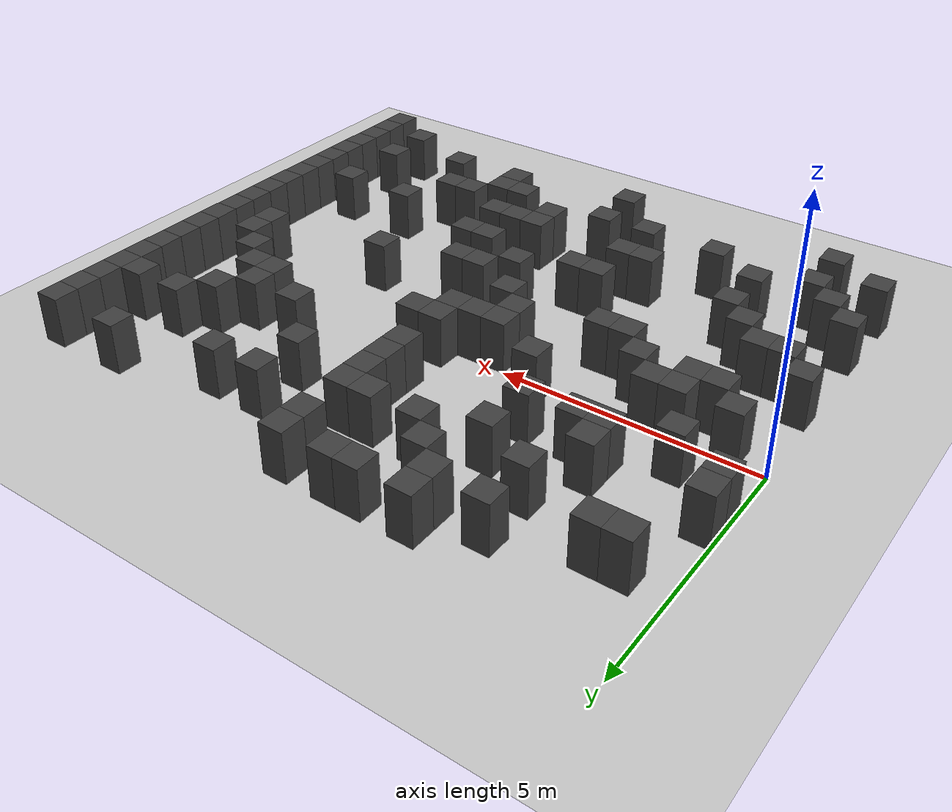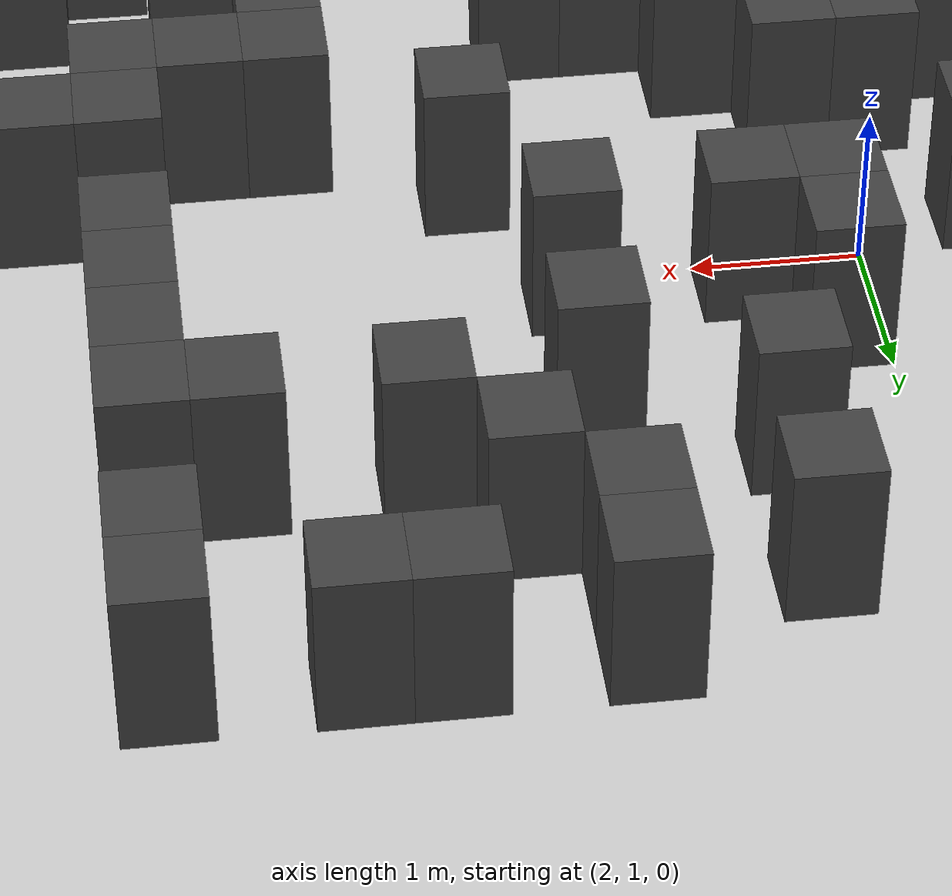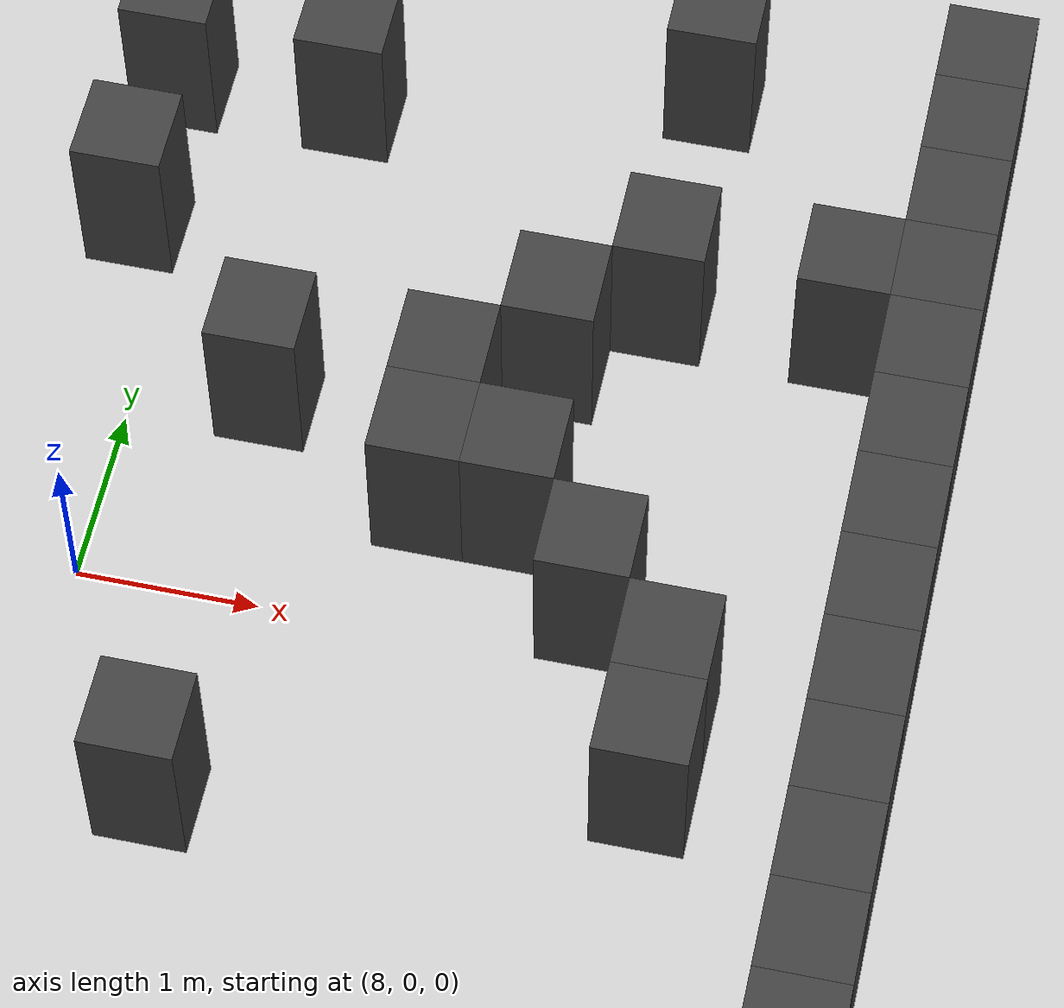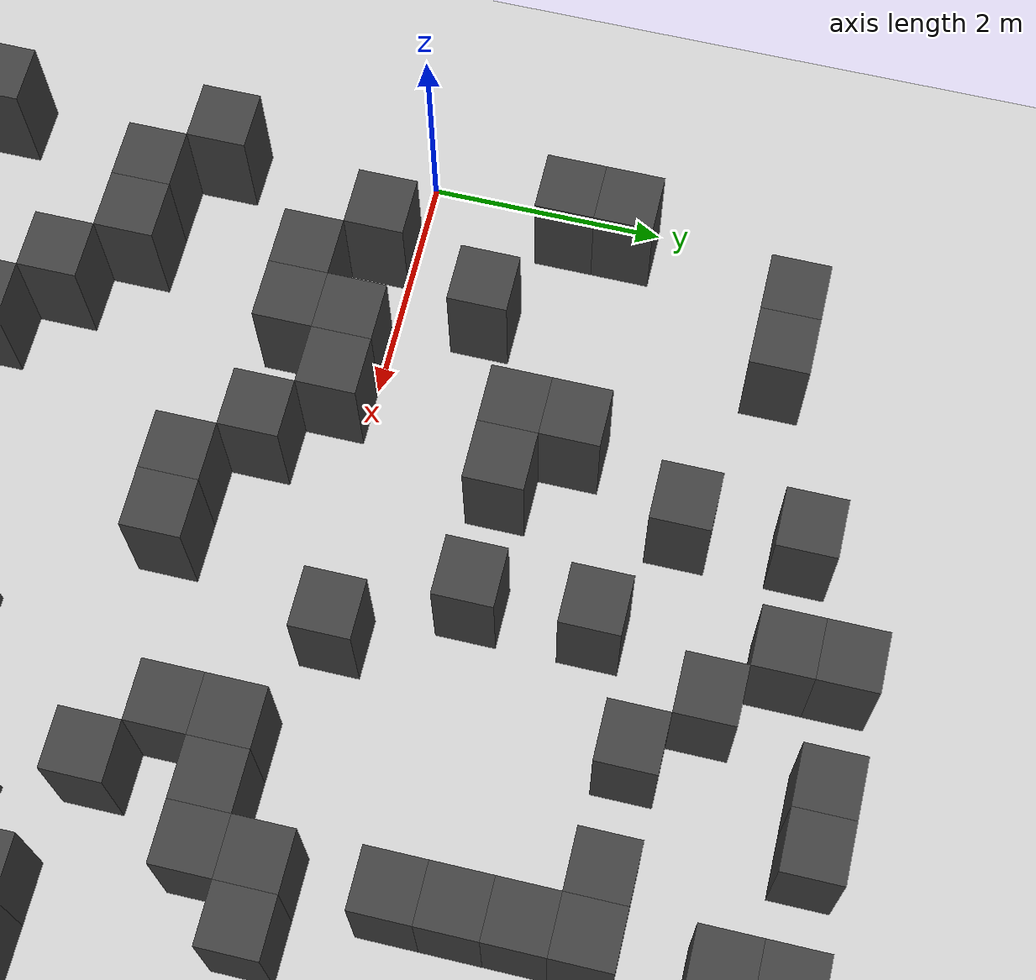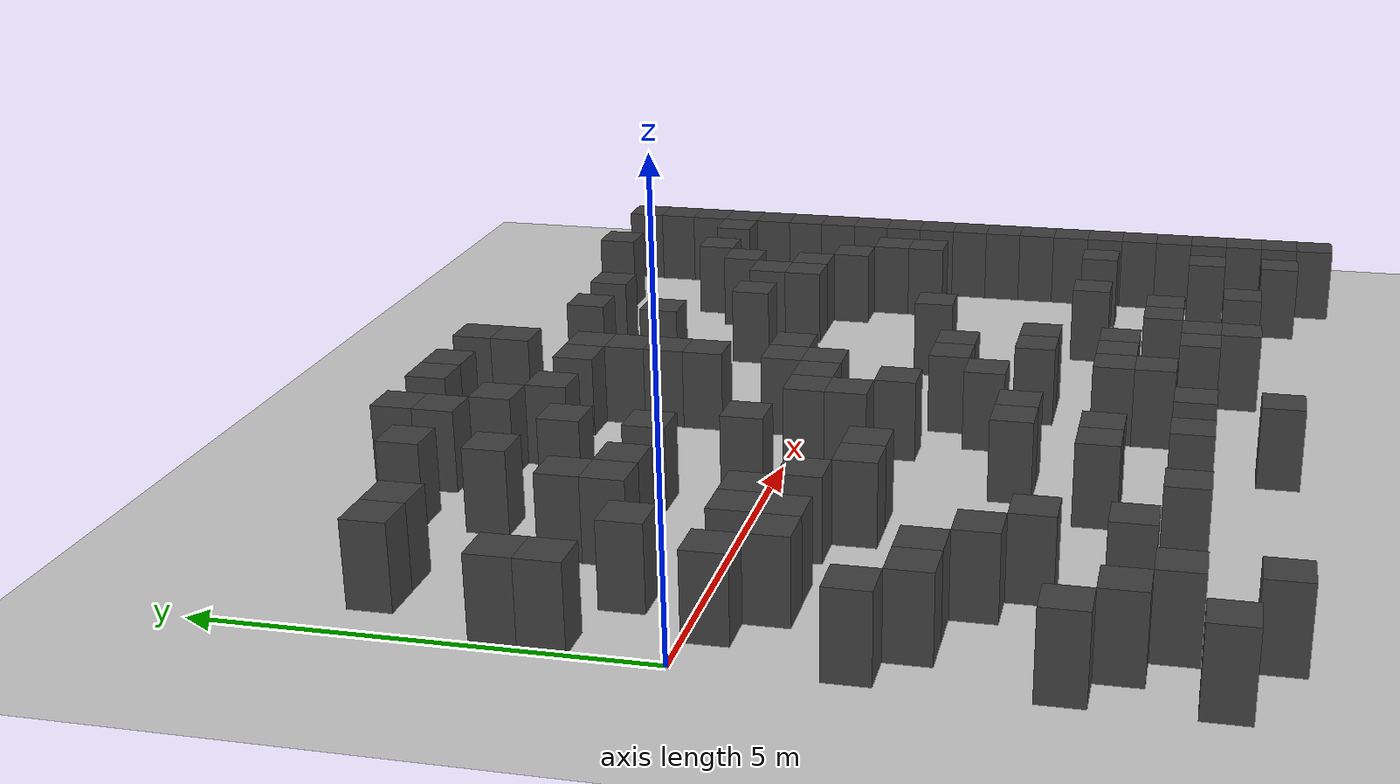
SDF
<sdf version="1.7">
 <world name="map_4492">
  <model name="ground_plane">
   <static>true</static>
   <link name="link">
    <collision name="collision">
     <geometry><plane><normal>0 0 1</normal><size>200 200</size></plane></geometry>
    </collision>
    <visual name="visual">
     <geometry><plane><normal>0 0 1</normal><size>200 200</size></plane></geometry>
     <material><ambient>0.8 0.8 0.8 1</ambient><diffuse>0.8 0.8 0.8 1</diffuse></material>
    </visual>
   </link>
  </model>
  <model name="maze_environment">
   <static>true</static>
   <link name="wall_243">
    <pose>3.750 4.250 0.500 0 0 0</pose>
    <collision name="col"><geometry><box><size>0.5 0.5 1.0</size></box></geometry></collision>
    <visual name="vis">
     <geometry><box><size>0.5 0.5 1.0</size></box></geometry>
     <material><ambient>0.15 0.15 0.15 1</ambient><diffuse>0.25 0.25 0.25 1</diffuse></material>
    </visual>
   </link>
   <link name="wall_244">
    <pose>4.750 4.250 0.500 0 0 0</pose>
    <collision name="col"><geometry><box><size>0.5 0.5 1.0</size></box></geometry></collision>
    <visual name="vis">
     <geometry><box><size>0.5 0.5 1.0</size></box></geometry>
     <material><ambient>0.15 0.15 0.15 1</ambient><diffuse>0.25 0.25 0.25 1</diffuse></material>
    </visual>
   </link>
   <link name="wall_245">
    <pose>5.250 4.250 0.500 0 0 0</pose>
    <collision name="col"><geometry><box><size>0.5 0.5 1.0</size></box></geometry></collision>
    <visual name="vis">
     <geometry><box><size>0.5 0.5 1.0</size></box></geometry>
     <material><ambient>0.15 0.15 0.15 1</ambient><diffuse>0.25 0.25 0.25 1</diffuse></material>
    </visual>
   </link>
   <link name="wall_246">
    <pose>6.250 4.250 0.500 0 0 0</pose>
    <collision name="col"><geometry><box><size>0.5 0.5 1.0</size></box></geometry></collision>
    <visual name="vis">
     <geometry><box><size>0.5 0.5 1.0</size></box></geometry>
     <material><ambient>0.15 0.15 0.15 1</ambient><diffuse>0.25 0.25 0.25 1</diffuse></material>
    </visual>
   </link>
   <link name="wall_254">
    <pose>2.750 3.750 0.500 0 0 0</pose>
    <collision name="col"><geometry><box><size>0.5 0.5 1.0</size></box></geometry></collision>
    <visual name="vis">
     <geometry><box><size>0.5 0.5 1.0</size></box></geometry>
     <material><ambient>0.15 0.15 0.15 1</ambient><diffuse>0.25 0.25 0.25 1</diffuse></material>
    </visual>
   </link>
   <link name="wall_255">
    <pose>3.750 3.750 0.500 0 0 0</pose>
    <collision name="col"><geometry><box><size>0.5 0.5 1.0</size></box></geometry></collision>
    <visual name="vis">
     <geometry><box><size>0.5 0.5 1.0</size></box></geometry>
     <material><ambient>0.15 0.15 0.15 1</ambient><diffuse>0.25 0.25 0.25 1</diffuse></material>
    </visual>
   </link>
   <link name="wall_256">
    <pose>6.250 3.750 0.500 0 0 0</pose>
    <collision name="col"><geometry><box><size>0.5 0.5 1.0</size></box></geometry></collision>
    <visual name="vis">
     <geometry><box><size>0.5 0.5 1.0</size></box></geometry>
     <material><ambient>0.15 0.15 0.15 1</ambient><diffuse>0.25 0.25 0.25 1</diffuse></material>
    </visual>
   </link>
   <link name="wall_257">
    <pose>10.750 3.750 0.500 0 0 0</pose>
    <collision name="col"><geometry><box><size>0.5 0.5 1.0</size></box></geometry></collision>
    <visual name="vis">
     <geometry><box><size>0.5 0.5 1.0</size></box></geometry>
     <material><ambient>0.15 0.15 0.15 1</ambient><diffuse>0.25 0.25 0.25 1</diffuse></material>
    </visual>
   </link>
   <link name="wall_258">
    <pose>12.250 3.750 0.500 0 0 0</pose>
    <collision name="col"><geometry><box><size>0.5 0.5 1.0</size></box></geometry></collision>
    <visual name="vis">
     <geometry><box><size>0.5 0.5 1.0</size></box></geometry>
     <material><ambient>0.15 0.15 0.15 1</ambient><diffuse>0.25 0.25 0.25 1</diffuse></material>
    </visual>
   </link>
   <link name="wall_265">
    <pose>0.750 3.250 0.500 0 0 0</pose>
    <collision name="col"><geometry><box><size>0.5 0.5 1.0</size></box></geometry></collision>
    <visual name="vis">
     <geometry><box><size>0.5 0.5 1.0</size></box></geometry>
     <material><ambient>0.15 0.15 0.15 1</ambient><diffuse>0.25 0.25 0.25 1</diffuse></material>
    </visual>
   </link>
   <link name="wall_266">
    <pose>1.250 3.250 0.500 0 0 0</pose>
    <collision name="col"><geometry><box><size>0.5 0.5 1.0</size></box></geometry></collision>
    <visual name="vis">
     <geometry><box><size>0.5 0.5 1.0</size></box></geometry>
     <material><ambient>0.15 0.15 0.15 1</ambient><diffuse>0.25 0.25 0.25 1</diffuse></material>
    </visual>
   </link>
   <link name="wall_267">
    <pose>4.250 3.250 0.500 0 0 0</pose>
    <collision name="col"><geometry><box><size>0.5 0.5 1.0</size></box></geometry></collision>
    <visual name="vis">
     <geometry><box><size>0.5 0.5 1.0</size></box></geometry>
     <material><ambient>0.15 0.15 0.15 1</ambient><diffuse>0.25 0.25 0.25 1</diffuse></material>
    </visual>
   </link>
   <link name="wall_268">
    <pose>7.750 3.250 0.500 0 0 0</pose>
    <collision name="col"><geometry><box><size>0.5 0.5 1.0</size></box></geometry></collision>
    <visual name="vis">
     <geometry><box><size>0.5 0.5 1.0</size></box></geometry>
     <material><ambient>0.15 0.15 0.15 1</ambient><diffuse>0.25 0.25 0.25 1</diffuse></material>
    </visual>
   </link>
   <link name="wall_269">
    <pose>8.750 3.250 0.500 0 0 0</pose>
    <collision name="col"><geometry><box><size>0.5 0.5 1.0</size></box></geometry></collision>
    <visual name="vis">
     <geometry><box><size>0.5 0.5 1.0</size></box></geometry>
     <material><ambient>0.15 0.15 0.15 1</ambient><diffuse>0.25 0.25 0.25 1</diffuse></material>
    </visual>
   </link>
   <link name="wall_270">
    <pose>12.250 3.250 0.500 0 0 0</pose>
    <collision name="col"><geometry><box><size>0.5 0.5 1.0</size></box></geometry></collision>
    <visual name="vis">
     <geometry><box><size>0.5 0.5 1.0</size></box></geometry>
     <material><ambient>0.15 0.15 0.15 1</ambient><diffuse>0.25 0.25 0.25 1</diffuse></material>
    </visual>
   </link>
   <link name="wall_277">
    <pose>2.750 2.750 0.500 0 0 0</pose>
    <collision name="col"><geometry><box><size>0.5 0.5 1.0</size></box></geometry></collision>
    <visual name="vis">
     <geometry><box><size>0.5 0.5 1.0</size></box></geometry>
     <material><ambient>0.15 0.15 0.15 1</ambient><diffuse>0.25 0.25 0.25 1</diffuse></material>
    </visual>
   </link>
   <link name="wall_278">
    <pose>4.750 2.750 0.500 0 0 0</pose>
    <collision name="col"><geometry><box><size>0.5 0.5 1.0</size></box></geometry></collision>
    <visual name="vis">
     <geometry><box><size>0.5 0.5 1.0</size></box></geometry>
     <material><ambient>0.15 0.15 0.15 1</ambient><diffuse>0.25 0.25 0.25 1</diffuse></material>
    </visual>
   </link>
   <link name="wall_279">
    <pose>5.750 2.750 0.500 0 0 0</pose>
    <collision name="col"><geometry><box><size>0.5 0.5 1.0</size></box></geometry></collision>
    <visual name="vis">
     <geometry><box><size>0.5 0.5 1.0</size></box></geometry>
     <material><ambient>0.15 0.15 0.15 1</ambient><diffuse>0.25 0.25 0.25 1</diffuse></material>
    </visual>
   </link>
   <link name="wall_280">
    <pose>6.250 2.750 0.500 0 0 0</pose>
    <collision name="col"><geometry><box><size>0.5 0.5 1.0</size></box></geometry></collision>
    <visual name="vis">
     <geometry><box><size>0.5 0.5 1.0</size></box></geometry>
     <material><ambient>0.15 0.15 0.15 1</ambient><diffuse>0.25 0.25 0.25 1</diffuse></material>
    </visual>
   </link>
   <link name="wall_281">
    <pose>12.250 2.750 0.500 0 0 0</pose>
    <collision name="col"><geometry><box><size>0.5 0.5 1.0</size></box></geometry></collision>
    <visual name="vis">
     <geometry><box><size>0.5 0.5 1.0</size></box></geometry>
     <material><ambient>0.15 0.15 0.15 1</ambient><diffuse>0.25 0.25 0.25 1</diffuse></material>
    </visual>
   </link>
   <link name="wall_291">
    <pose>3.750 2.250 0.500 0 0 0</pose>
    <collision name="col"><geometry><box><size>0.5 0.5 1.0</size></box></geometry></collision>
    <visual name="vis">
     <geometry><box><size>0.5 0.5 1.0</size></box></geometry>
     <material><ambient>0.15 0.15 0.15 1</ambient><diffuse>0.25 0.25 0.25 1</diffuse></material>
    </visual>
   </link>
   <link name="wall_292">
    <pose>6.250 2.250 0.500 0 0 0</pose>
    <collision name="col"><geometry><box><size>0.5 0.5 1.0</size></box></geometry></collision>
    <visual name="vis">
     <geometry><box><size>0.5 0.5 1.0</size></box></geometry>
     <material><ambient>0.15 0.15 0.15 1</ambient><diffuse>0.25 0.25 0.25 1</diffuse></material>
    </visual>
   </link>
   <link name="wall_293">
    <pose>7.750 2.250 0.500 0 0 0</pose>
    <collision name="col"><geometry><box><size>0.5 0.5 1.0</size></box></geometry></collision>
    <visual name="vis">
     <geometry><box><size>0.5 0.5 1.0</size></box></geometry>
     <material><ambient>0.15 0.15 0.15 1</ambient><diffuse>0.25 0.25 0.25 1</diffuse></material>
    </visual>
   </link>
   <link name="wall_294">
    <pose>10.750 2.250 0.500 0 0 0</pose>
    <collision name="col"><geometry><box><size>0.5 0.5 1.0</size></box></geometry></collision>
    <visual name="vis">
     <geometry><box><size>0.5 0.5 1.0</size></box></geometry>
     <material><ambient>0.15 0.15 0.15 1</ambient><diffuse>0.25 0.25 0.25 1</diffuse></material>
    </visual>
   </link>
   <link name="wall_295">
    <pose>11.750 2.250 0.500 0 0 0</pose>
    <collision name="col"><geometry><box><size>0.5 0.5 1.0</size></box></geometry></collision>
    <visual name="vis">
     <geometry><box><size>0.5 0.5 1.0</size></box></geometry>
     <material><ambient>0.15 0.15 0.15 1</ambient><diffuse>0.25 0.25 0.25 1</diffuse></material>
    </visual>
   </link>
   <link name="wall_296">
    <pose>12.250 2.250 0.500 0 0 0</pose>
    <collision name="col"><geometry><box><size>0.5 0.5 1.0</size></box></geometry></collision>
    <visual name="vis">
     <geometry><box><size>0.5 0.5 1.0</size></box></geometry>
     <material><ambient>0.15 0.15 0.15 1</ambient><diffuse>0.25 0.25 0.25 1</diffuse></material>
    </visual>
   </link>
   <link name="wall_302">
    <pose>0.250 1.750 0.500 0 0 0</pose>
    <collision name="col"><geometry><box><size>0.5 0.5 1.0</size></box></geometry></collision>
    <visual name="vis">
     <geometry><box><size>0.5 0.5 1.0</size></box></geometry>
     <material><ambient>0.15 0.15 0.15 1</ambient><diffuse>0.25 0.25 0.25 1</diffuse></material>
    </visual>
   </link>
   <link name="wall_303">
    <pose>2.250 1.750 0.500 0 0 0</pose>
    <collision name="col"><geometry><box><size>0.5 0.5 1.0</size></box></geometry></collision>
    <visual name="vis">
     <geometry><box><size>0.5 0.5 1.0</size></box></geometry>
     <material><ambient>0.15 0.15 0.15 1</ambient><diffuse>0.25 0.25 0.25 1</diffuse></material>
    </visual>
   </link>
   <link name="wall_304">
    <pose>6.250 1.750 0.500 0 0 0</pose>
    <collision name="col"><geometry><box><size>0.5 0.5 1.0</size></box></geometry></collision>
    <visual name="vis">
     <geometry><box><size>0.5 0.5 1.0</size></box></geometry>
     <material><ambient>0.15 0.15 0.15 1</ambient><diffuse>0.25 0.25 0.25 1</diffuse></material>
    </visual>
   </link>
   <link name="wall_305">
    <pose>10.250 1.750 0.500 0 0 0</pose>
    <collision name="col"><geometry><box><size>0.5 0.5 1.0</size></box></geometry></collision>
    <visual name="vis">
     <geometry><box><size>0.5 0.5 1.0</size></box></geometry>
     <material><ambient>0.15 0.15 0.15 1</ambient><diffuse>0.25 0.25 0.25 1</diffuse></material>
    </visual>
   </link>
   <link name="wall_306">
    <pose>12.250 1.750 0.500 0 0 0</pose>
    <collision name="col"><geometry><box><size>0.5 0.5 1.0</size></box></geometry></collision>
    <visual name="vis">
     <geometry><box><size>0.5 0.5 1.0</size></box></geometry>
     <material><ambient>0.15 0.15 0.15 1</ambient><diffuse>0.25 0.25 0.25 1</diffuse></material>
    </visual>
   </link>
   <link name="wall_314">
    <pose>0.250 1.250 0.500 0 0 0</pose>
    <collision name="col"><geometry><box><size>0.5 0.5 1.0</size></box></geometry></collision>
    <visual name="vis">
     <geometry><box><size>0.5 0.5 1.0</size></box></geometry>
     <material><ambient>0.15 0.15 0.15 1</ambient><diffuse>0.25 0.25 0.25 1</diffuse></material>
    </visual>
   </link>
   <link name="wall_315">
    <pose>2.250 1.250 0.500 0 0 0</pose>
    <collision name="col"><geometry><box><size>0.5 0.5 1.0</size></box></geometry></collision>
    <visual name="vis">
     <geometry><box><size>0.5 0.5 1.0</size></box></geometry>
     <material><ambient>0.15 0.15 0.15 1</ambient><diffuse>0.25 0.25 0.25 1</diffuse></material>
    </visual>
   </link>
   <link name="wall_316">
    <pose>2.750 1.250 0.500 0 0 0</pose>
    <collision name="col"><geometry><box><size>0.5 0.5 1.0</size></box></geometry></collision>
    <visual name="vis">
     <geometry><box><size>0.5 0.5 1.0</size></box></geometry>
     <material><ambient>0.15 0.15 0.15 1</ambient><diffuse>0.25 0.25 0.25 1</diffuse></material>
    </visual>
   </link>
   <link name="wall_317">
    <pose>3.750 1.250 0.500 0 0 0</pose>
    <collision name="col"><geometry><box><size>0.5 0.5 1.0</size></box></geometry></collision>
    <visual name="vis">
     <geometry><box><size>0.5 0.5 1.0</size></box></geometry>
     <material><ambient>0.15 0.15 0.15 1</ambient><diffuse>0.25 0.25 0.25 1</diffuse></material>
    </visual>
   </link>
   <link name="wall_318">
    <pose>6.250 1.250 0.500 0 0 0</pose>
    <collision name="col"><geometry><box><size>0.5 0.5 1.0</size></box></geometry></collision>
    <visual name="vis">
     <geometry><box><size>0.5 0.5 1.0</size></box></geometry>
     <material><ambient>0.15 0.15 0.15 1</ambient><diffuse>0.25 0.25 0.25 1</diffuse></material>
    </visual>
   </link>
   <link name="wall_319">
    <pose>8.750 1.250 0.500 0 0 0</pose>
    <collision name="col"><geometry><box><size>0.5 0.5 1.0</size></box></geometry></collision>
    <visual name="vis">
     <geometry><box><size>0.5 0.5 1.0</size></box></geometry>
     <material><ambient>0.15 0.15 0.15 1</ambient><diffuse>0.25 0.25 0.25 1</diffuse></material>
    </visual>
   </link>
   <link name="wall_320">
    <pose>9.750 1.250 0.500 0 0 0</pose>
    <collision name="col"><geometry><box><size>0.5 0.5 1.0</size></box></geometry></collision>
    <visual name="vis">
     <geometry><box><size>0.5 0.5 1.0</size></box></geometry>
     <material><ambient>0.15 0.15 0.15 1</ambient><diffuse>0.25 0.25 0.25 1</diffuse></material>
    </visual>
   </link>
   <link name="wall_321">
    <pose>12.250 1.250 0.500 0 0 0</pose>
    <collision name="col"><geometry><box><size>0.5 0.5 1.0</size></box></geometry></collision>
    <visual name="vis">
     <geometry><box><size>0.5 0.5 1.0</size></box></geometry>
     <material><ambient>0.15 0.15 0.15 1</ambient><diffuse>0.25 0.25 0.25 1</diffuse></material>
    </visual>
   </link>
   <link name="wall_325">
    <pose>1.250 0.750 0.500 0 0 0</pose>
    <collision name="col"><geometry><box><size>0.5 0.5 1.0</size></box></geometry></collision>
    <visual name="vis">
     <geometry><box><size>0.5 0.5 1.0</size></box></geometry>
     <material><ambient>0.15 0.15 0.15 1</ambient><diffuse>0.25 0.25 0.25 1</diffuse></material>
    </visual>
   </link>
   <link name="wall_326">
    <pose>9.750 0.750 0.500 0 0 0</pose>
    <collision name="col"><geometry><box><size>0.5 0.5 1.0</size></box></geometry></collision>
    <visual name="vis">
     <geometry><box><size>0.5 0.5 1.0</size></box></geometry>
     <material><ambient>0.15 0.15 0.15 1</ambient><diffuse>0.25 0.25 0.25 1</diffuse></material>
    </visual>
   </link>
   <link name="wall_327">
    <pose>10.250 0.750 0.500 0 0 0</pose>
    <collision name="col"><geometry><box><size>0.5 0.5 1.0</size></box></geometry></collision>
    <visual name="vis">
     <geometry><box><size>0.5 0.5 1.0</size></box></geometry>
     <material><ambient>0.15 0.15 0.15 1</ambient><diffuse>0.25 0.25 0.25 1</diffuse></material>
    </visual>
   </link>
   <link name="wall_328">
    <pose>12.250 0.750 0.500 0 0 0</pose>
    <collision name="col"><geometry><box><size>0.5 0.5 1.0</size></box></geometry></collision>
    <visual name="vis">
     <geometry><box><size>0.5 0.5 1.0</size></box></geometry>
     <material><ambient>0.15 0.15 0.15 1</ambient><diffuse>0.25 0.25 0.25 1</diffuse></material>
    </visual>
   </link>
   <link name="wall_334">
    <pose>4.250 0.250 0.500 0 0 0</pose>
    <collision name="col"><geometry><box><size>0.5 0.5 1.0</size></box></geometry></collision>
    <visual name="vis">
     <geometry><box><size>0.5 0.5 1.0</size></box></geometry>
     <material><ambient>0.15 0.15 0.15 1</ambient><diffuse>0.25 0.25 0.25 1</diffuse></material>
    </visual>
   </link>
   <link name="wall_335">
    <pose>6.250 0.250 0.500 0 0 0</pose>
    <collision name="col"><geometry><box><size>0.5 0.5 1.0</size></box></geometry></collision>
    <visual name="vis">
     <geometry><box><size>0.5 0.5 1.0</size></box></geometry>
     <material><ambient>0.15 0.15 0.15 1</ambient><diffuse>0.25 0.25 0.25 1</diffuse></material>
    </visual>
   </link>
   <link name="wall_336">
    <pose>6.750 0.250 0.500 0 0 0</pose>
    <collision name="col"><geometry><box><size>0.5 0.5 1.0</size></box></geometry></collision>
    <visual name="vis">
     <geometry><box><size>0.5 0.5 1.0</size></box></geometry>
     <material><ambient>0.15 0.15 0.15 1</ambient><diffuse>0.25 0.25 0.25 1</diffuse></material>
    </visual>
   </link>
   <link name="wall_337">
    <pose>10.750 0.250 0.500 0 0 0</pose>
    <collision name="col"><geometry><box><size>0.5 0.5 1.0</size></box></geometry></collision>
    <visual name="vis">
     <geometry><box><size>0.5 0.5 1.0</size></box></geometry>
     <material><ambient>0.15 0.15 0.15 1</ambient><diffuse>0.25 0.25 0.25 1</diffuse></material>
    </visual>
   </link>
   <link name="wall_338">
    <pose>12.250 0.250 0.500 0 0 0</pose>
    <collision name="col"><geometry><box><size>0.5 0.5 1.0</size></box></geometry></collision>
    <visual name="vis">
     <geometry><box><size>0.5 0.5 1.0</size></box></geometry>
     <material><ambient>0.15 0.15 0.15 1</ambient><diffuse>0.25 0.25 0.25 1</diffuse></material>
    </visual>
   </link>
   <link name="wall_344">
    <pose>0.750 -0.250 0.500 0 0 0</pose>
    <collision name="col"><geometry><box><size>0.5 0.5 1.0</size></box></geometry></collision>
    <visual name="vis">
     <geometry><box><size>0.5 0.5 1.0</size></box></geometry>
     <material><ambient>0.15 0.15 0.15 1</ambient><diffuse>0.25 0.25 0.25 1</diffuse></material>
    </visual>
   </link>
   <link name="wall_345">
    <pose>1.750 -0.250 0.500 0 0 0</pose>
    <collision name="col"><geometry><box><size>0.5 0.5 1.0</size></box></geometry></collision>
    <visual name="vis">
     <geometry><box><size>0.5 0.5 1.0</size></box></geometry>
     <material><ambient>0.15 0.15 0.15 1</ambient><diffuse>0.25 0.25 0.25 1</diffuse></material>
    </visual>
   </link>
   <link name="wall_346">
    <pose>2.250 -0.250 0.500 0 0 0</pose>
    <collision name="col"><geometry><box><size>0.5 0.5 1.0</size></box></geometry></collision>
    <visual name="vis">
     <geometry><box><size>0.5 0.5 1.0</size></box></geometry>
     <material><ambient>0.15 0.15 0.15 1</ambient><diffuse>0.25 0.25 0.25 1</diffuse></material>
    </visual>
   </link>
   <link name="wall_347">
    <pose>5.250 -0.250 0.500 0 0 0</pose>
    <collision name="col"><geometry><box><size>0.5 0.5 1.0</size></box></geometry></collision>
    <visual name="vis">
     <geometry><box><size>0.5 0.5 1.0</size></box></geometry>
     <material><ambient>0.15 0.15 0.15 1</ambient><diffuse>0.25 0.25 0.25 1</diffuse></material>
    </visual>
   </link>
   <link name="wall_348">
    <pose>5.750 -0.250 0.500 0 0 0</pose>
    <collision name="col"><geometry><box><size>0.5 0.5 1.0</size></box></geometry></collision>
    <visual name="vis">
     <geometry><box><size>0.5 0.5 1.0</size></box></geometry>
     <material><ambient>0.15 0.15 0.15 1</ambient><diffuse>0.25 0.25 0.25 1</diffuse></material>
    </visual>
   </link>
   <link name="wall_349">
    <pose>6.250 -0.250 0.500 0 0 0</pose>
    <collision name="col"><geometry><box><size>0.5 0.5 1.0</size></box></geometry></collision>
    <visual name="vis">
     <geometry><box><size>0.5 0.5 1.0</size></box></geometry>
     <material><ambient>0.15 0.15 0.15 1</ambient><diffuse>0.25 0.25 0.25 1</diffuse></material>
    </visual>
   </link>
   <link name="wall_350">
    <pose>11.250 -0.250 0.500 0 0 0</pose>
    <collision name="col"><geometry><box><size>0.5 0.5 1.0</size></box></geometry></collision>
    <visual name="vis">
     <geometry><box><size>0.5 0.5 1.0</size></box></geometry>
     <material><ambient>0.15 0.15 0.15 1</ambient><diffuse>0.25 0.25 0.25 1</diffuse></material>
    </visual>
   </link>
   <link name="wall_351">
    <pose>12.250 -0.250 0.500 0 0 0</pose>
    <collision name="col"><geometry><box><size>0.5 0.5 1.0</size></box></geometry></collision>
    <visual name="vis">
     <geometry><box><size>0.5 0.5 1.0</size></box></geometry>
     <material><ambient>0.15 0.15 0.15 1</ambient><diffuse>0.25 0.25 0.25 1</diffuse></material>
    </visual>
   </link>
   <link name="wall_360">
    <pose>1.250 -0.750 0.500 0 0 0</pose>
    <collision name="col"><geometry><box><size>0.5 0.5 1.0</size></box></geometry></collision>
    <visual name="vis">
     <geometry><box><size>0.5 0.5 1.0</size></box></geometry>
     <material><ambient>0.15 0.15 0.15 1</ambient><diffuse>0.25 0.25 0.25 1</diffuse></material>
    </visual>
   </link>
   <link name="wall_361">
    <pose>1.750 -0.750 0.500 0 0 0</pose>
    <collision name="col"><geometry><box><size>0.5 0.5 1.0</size></box></geometry></collision>
    <visual name="vis">
     <geometry><box><size>0.5 0.5 1.0</size></box></geometry>
     <material><ambient>0.15 0.15 0.15 1</ambient><diffuse>0.25 0.25 0.25 1</diffuse></material>
    </visual>
   </link>
   <link name="wall_362">
    <pose>2.750 -0.750 0.500 0 0 0</pose>
    <collision name="col"><geometry><box><size>0.5 0.5 1.0</size></box></geometry></collision>
    <visual name="vis">
     <geometry><box><size>0.5 0.5 1.0</size></box></geometry>
     <material><ambient>0.15 0.15 0.15 1</ambient><diffuse>0.25 0.25 0.25 1</diffuse></material>
    </visual>
   </link>
   <link name="wall_363">
    <pose>5.250 -0.750 0.500 0 0 0</pose>
    <collision name="col"><geometry><box><size>0.5 0.5 1.0</size></box></geometry></collision>
    <visual name="vis">
     <geometry><box><size>0.5 0.5 1.0</size></box></geometry>
     <material><ambient>0.15 0.15 0.15 1</ambient><diffuse>0.25 0.25 0.25 1</diffuse></material>
    </visual>
   </link>
   <link name="wall_364">
    <pose>11.250 -0.750 0.500 0 0 0</pose>
    <collision name="col"><geometry><box><size>0.5 0.5 1.0</size></box></geometry></collision>
    <visual name="vis">
     <geometry><box><size>0.5 0.5 1.0</size></box></geometry>
     <material><ambient>0.15 0.15 0.15 1</ambient><diffuse>0.25 0.25 0.25 1</diffuse></material>
    </visual>
   </link>
   <link name="wall_365">
    <pose>12.250 -0.750 0.500 0 0 0</pose>
    <collision name="col"><geometry><box><size>0.5 0.5 1.0</size></box></geometry></collision>
    <visual name="vis">
     <geometry><box><size>0.5 0.5 1.0</size></box></geometry>
     <material><ambient>0.15 0.15 0.15 1</ambient><diffuse>0.25 0.25 0.25 1</diffuse></material>
    </visual>
   </link>
   <link name="wall_375">
    <pose>3.250 -1.250 0.500 0 0 0</pose>
    <collision name="col"><geometry><box><size>0.5 0.5 1.0</size></box></geometry></collision>
    <visual name="vis">
     <geometry><box><size>0.5 0.5 1.0</size></box></geometry>
     <material><ambient>0.15 0.15 0.15 1</ambient><diffuse>0.25 0.25 0.25 1</diffuse></material>
    </visual>
   </link>
   <link name="wall_376">
    <pose>3.750 -1.250 0.500 0 0 0</pose>
    <collision name="col"><geometry><box><size>0.5 0.5 1.0</size></box></geometry></collision>
    <visual name="vis">
     <geometry><box><size>0.5 0.5 1.0</size></box></geometry>
     <material><ambient>0.15 0.15 0.15 1</ambient><diffuse>0.25 0.25 0.25 1</diffuse></material>
    </visual>
   </link>
   <link name="wall_377">
    <pose>5.750 -1.250 0.500 0 0 0</pose>
    <collision name="col"><geometry><box><size>0.5 0.5 1.0</size></box></geometry></collision>
    <visual name="vis">
     <geometry><box><size>0.5 0.5 1.0</size></box></geometry>
     <material><ambient>0.15 0.15 0.15 1</ambient><diffuse>0.25 0.25 0.25 1</diffuse></material>
    </visual>
   </link>
   <link name="wall_378">
    <pose>8.750 -1.250 0.500 0 0 0</pose>
    <collision name="col"><geometry><box><size>0.5 0.5 1.0</size></box></geometry></collision>
    <visual name="vis">
     <geometry><box><size>0.5 0.5 1.0</size></box></geometry>
     <material><ambient>0.15 0.15 0.15 1</ambient><diffuse>0.25 0.25 0.25 1</diffuse></material>
    </visual>
   </link>
   <link name="wall_379">
    <pose>12.250 -1.250 0.500 0 0 0</pose>
    <collision name="col"><geometry><box><size>0.5 0.5 1.0</size></box></geometry></collision>
    <visual name="vis">
     <geometry><box><size>0.5 0.5 1.0</size></box></geometry>
     <material><ambient>0.15 0.15 0.15 1</ambient><diffuse>0.25 0.25 0.25 1</diffuse></material>
    </visual>
   </link>
   <link name="wall_383">
    <pose>0.250 -1.750 0.500 0 0 0</pose>
    <collision name="col"><geometry><box><size>0.5 0.5 1.0</size></box></geometry></collision>
    <visual name="vis">
     <geometry><box><size>0.5 0.5 1.0</size></box></geometry>
     <material><ambient>0.15 0.15 0.15 1</ambient><diffuse>0.25 0.25 0.25 1</diffuse></material>
    </visual>
   </link>
   <link name="wall_384">
    <pose>6.750 -1.750 0.500 0 0 0</pose>
    <collision name="col"><geometry><box><size>0.5 0.5 1.0</size></box></geometry></collision>
    <visual name="vis">
     <geometry><box><size>0.5 0.5 1.0</size></box></geometry>
     <material><ambient>0.15 0.15 0.15 1</ambient><diffuse>0.25 0.25 0.25 1</diffuse></material>
    </visual>
   </link>
   <link name="wall_385">
    <pose>7.250 -1.750 0.500 0 0 0</pose>
    <collision name="col"><geometry><box><size>0.5 0.5 1.0</size></box></geometry></collision>
    <visual name="vis">
     <geometry><box><size>0.5 0.5 1.0</size></box></geometry>
     <material><ambient>0.15 0.15 0.15 1</ambient><diffuse>0.25 0.25 0.25 1</diffuse></material>
    </visual>
   </link>
   <link name="wall_386">
    <pose>12.250 -1.750 0.500 0 0 0</pose>
    <collision name="col"><geometry><box><size>0.5 0.5 1.0</size></box></geometry></collision>
    <visual name="vis">
     <geometry><box><size>0.5 0.5 1.0</size></box></geometry>
     <material><ambient>0.15 0.15 0.15 1</ambient><diffuse>0.25 0.25 0.25 1</diffuse></material>
    </visual>
   </link>
   <link name="wall_393">
    <pose>0.750 -2.250 0.500 0 0 0</pose>
    <collision name="col"><geometry><box><size>0.5 0.5 1.0</size></box></geometry></collision>
    <visual name="vis">
     <geometry><box><size>0.5 0.5 1.0</size></box></geometry>
     <material><ambient>0.15 0.15 0.15 1</ambient><diffuse>0.25 0.25 0.25 1</diffuse></material>
    </visual>
   </link>
   <link name="wall_394">
    <pose>1.250 -2.250 0.500 0 0 0</pose>
    <collision name="col"><geometry><box><size>0.5 0.5 1.0</size></box></geometry></collision>
    <visual name="vis">
     <geometry><box><size>0.5 0.5 1.0</size></box></geometry>
     <material><ambient>0.15 0.15 0.15 1</ambient><diffuse>0.25 0.25 0.25 1</diffuse></material>
    </visual>
   </link>
   <link name="wall_395">
    <pose>6.250 -2.250 0.500 0 0 0</pose>
    <collision name="col"><geometry><box><size>0.5 0.5 1.0</size></box></geometry></collision>
    <visual name="vis">
     <geometry><box><size>0.5 0.5 1.0</size></box></geometry>
     <material><ambient>0.15 0.15 0.15 1</ambient><diffuse>0.25 0.25 0.25 1</diffuse></material>
    </visual>
   </link>
   <link name="wall_396">
    <pose>12.250 -2.250 0.500 0 0 0</pose>
    <collision name="col"><geometry><box><size>0.5 0.5 1.0</size></box></geometry></collision>
    <visual name="vis">
     <geometry><box><size>0.5 0.5 1.0</size></box></geometry>
     <material><ambient>0.15 0.15 0.15 1</ambient><diffuse>0.25 0.25 0.25 1</diffuse></material>
    </visual>
   </link>
   <link name="wall_400">
    <pose>1.750 -2.750 0.500 0 0 0</pose>
    <collision name="col"><geometry><box><size>0.5 0.5 1.0</size></box></geometry></collision>
    <visual name="vis">
     <geometry><box><size>0.5 0.5 1.0</size></box></geometry>
     <material><ambient>0.15 0.15 0.15 1</ambient><diffuse>0.25 0.25 0.25 1</diffuse></material>
    </visual>
   </link>
   <link name="wall_401">
    <pose>4.750 -2.750 0.500 0 0 0</pose>
    <collision name="col"><geometry><box><size>0.5 0.5 1.0</size></box></geometry></collision>
    <visual name="vis">
     <geometry><box><size>0.5 0.5 1.0</size></box></geometry>
     <material><ambient>0.15 0.15 0.15 1</ambient><diffuse>0.25 0.25 0.25 1</diffuse></material>
    </visual>
   </link>
   <link name="wall_402">
    <pose>5.250 -2.750 0.500 0 0 0</pose>
    <collision name="col"><geometry><box><size>0.5 0.5 1.0</size></box></geometry></collision>
    <visual name="vis">
     <geometry><box><size>0.5 0.5 1.0</size></box></geometry>
     <material><ambient>0.15 0.15 0.15 1</ambient><diffuse>0.25 0.25 0.25 1</diffuse></material>
    </visual>
   </link>
   <link name="wall_403">
    <pose>7.250 -2.750 0.500 0 0 0</pose>
    <collision name="col"><geometry><box><size>0.5 0.5 1.0</size></box></geometry></collision>
    <visual name="vis">
     <geometry><box><size>0.5 0.5 1.0</size></box></geometry>
     <material><ambient>0.15 0.15 0.15 1</ambient><diffuse>0.25 0.25 0.25 1</diffuse></material>
    </visual>
   </link>
   <link name="wall_404">
    <pose>7.750 -2.750 0.500 0 0 0</pose>
    <collision name="col"><geometry><box><size>0.5 0.5 1.0</size></box></geometry></collision>
    <visual name="vis">
     <geometry><box><size>0.5 0.5 1.0</size></box></geometry>
     <material><ambient>0.15 0.15 0.15 1</ambient><diffuse>0.25 0.25 0.25 1</diffuse></material>
    </visual>
   </link>
   <link name="wall_405">
    <pose>12.250 -2.750 0.500 0 0 0</pose>
    <collision name="col"><geometry><box><size>0.5 0.5 1.0</size></box></geometry></collision>
    <visual name="vis">
     <geometry><box><size>0.5 0.5 1.0</size></box></geometry>
     <material><ambient>0.15 0.15 0.15 1</ambient><diffuse>0.25 0.25 0.25 1</diffuse></material>
    </visual>
   </link>
   <link name="wall_413">
    <pose>2.250 -3.250 0.500 0 0 0</pose>
    <collision name="col"><geometry><box><size>0.5 0.5 1.0</size></box></geometry></collision>
    <visual name="vis">
     <geometry><box><size>0.5 0.5 1.0</size></box></geometry>
     <material><ambient>0.15 0.15 0.15 1</ambient><diffuse>0.25 0.25 0.25 1</diffuse></material>
    </visual>
   </link>
   <link name="wall_414">
    <pose>9.750 -3.250 0.500 0 0 0</pose>
    <collision name="col"><geometry><box><size>0.5 0.5 1.0</size></box></geometry></collision>
    <visual name="vis">
     <geometry><box><size>0.5 0.5 1.0</size></box></geometry>
     <material><ambient>0.15 0.15 0.15 1</ambient><diffuse>0.25 0.25 0.25 1</diffuse></material>
    </visual>
   </link>
   <link name="wall_415">
    <pose>11.250 -3.250 0.500 0 0 0</pose>
    <collision name="col"><geometry><box><size>0.5 0.5 1.0</size></box></geometry></collision>
    <visual name="vis">
     <geometry><box><size>0.5 0.5 1.0</size></box></geometry>
     <material><ambient>0.15 0.15 0.15 1</ambient><diffuse>0.25 0.25 0.25 1</diffuse></material>
    </visual>
   </link>
   <link name="wall_416">
    <pose>12.250 -3.250 0.500 0 0 0</pose>
    <collision name="col"><geometry><box><size>0.5 0.5 1.0</size></box></geometry></collision>
    <visual name="vis">
     <geometry><box><size>0.5 0.5 1.0</size></box></geometry>
     <material><ambient>0.15 0.15 0.15 1</ambient><diffuse>0.25 0.25 0.25 1</diffuse></material>
    </visual>
   </link>
   <link name="wall_421">
    <pose>0.250 -3.750 0.500 0 0 0</pose>
    <collision name="col"><geometry><box><size>0.5 0.5 1.0</size></box></geometry></collision>
    <visual name="vis">
     <geometry><box><size>0.5 0.5 1.0</size></box></geometry>
     <material><ambient>0.15 0.15 0.15 1</ambient><diffuse>0.25 0.25 0.25 1</diffuse></material>
    </visual>
   </link>
   <link name="wall_422">
    <pose>4.250 -3.750 0.500 0 0 0</pose>
    <collision name="col"><geometry><box><size>0.5 0.5 1.0</size></box></geometry></collision>
    <visual name="vis">
     <geometry><box><size>0.5 0.5 1.0</size></box></geometry>
     <material><ambient>0.15 0.15 0.15 1</ambient><diffuse>0.25 0.25 0.25 1</diffuse></material>
    </visual>
   </link>
   <link name="wall_423">
    <pose>4.750 -3.750 0.500 0 0 0</pose>
    <collision name="col"><geometry><box><size>0.5 0.5 1.0</size></box></geometry></collision>
    <visual name="vis">
     <geometry><box><size>0.5 0.5 1.0</size></box></geometry>
     <material><ambient>0.15 0.15 0.15 1</ambient><diffuse>0.25 0.25 0.25 1</diffuse></material>
    </visual>
   </link>
   <link name="wall_424">
    <pose>6.750 -3.750 0.500 0 0 0</pose>
    <collision name="col"><geometry><box><size>0.5 0.5 1.0</size></box></geometry></collision>
    <visual name="vis">
     <geometry><box><size>0.5 0.5 1.0</size></box></geometry>
     <material><ambient>0.15 0.15 0.15 1</ambient><diffuse>0.25 0.25 0.25 1</diffuse></material>
    </visual>
   </link>
   <link name="wall_425">
    <pose>7.250 -3.750 0.500 0 0 0</pose>
    <collision name="col"><geometry><box><size>0.5 0.5 1.0</size></box></geometry></collision>
    <visual name="vis">
     <geometry><box><size>0.5 0.5 1.0</size></box></geometry>
     <material><ambient>0.15 0.15 0.15 1</ambient><diffuse>0.25 0.25 0.25 1</diffuse></material>
    </visual>
   </link>
   <link name="wall_426">
    <pose>7.750 -3.750 0.500 0 0 0</pose>
    <collision name="col"><geometry><box><size>0.5 0.5 1.0</size></box></geometry></collision>
    <visual name="vis">
     <geometry><box><size>0.5 0.5 1.0</size></box></geometry>
     <material><ambient>0.15 0.15 0.15 1</ambient><diffuse>0.25 0.25 0.25 1</diffuse></material>
    </visual>
   </link>
   <link name="wall_427">
    <pose>12.250 -3.750 0.500 0 0 0</pose>
    <collision name="col"><geometry><box><size>0.5 0.5 1.0</size></box></geometry></collision>
    <visual name="vis">
     <geometry><box><size>0.5 0.5 1.0</size></box></geometry>
     <material><ambient>0.15 0.15 0.15 1</ambient><diffuse>0.25 0.25 0.25 1</diffuse></material>
    </visual>
   </link>
   <link name="wall_432">
    <pose>0.750 -4.250 0.500 0 0 0</pose>
    <collision name="col"><geometry><box><size>0.5 0.5 1.0</size></box></geometry></collision>
    <visual name="vis">
     <geometry><box><size>0.5 0.5 1.0</size></box></geometry>
     <material><ambient>0.15 0.15 0.15 1</ambient><diffuse>0.25 0.25 0.25 1</diffuse></material>
    </visual>
   </link>
   <link name="wall_433">
    <pose>2.250 -4.250 0.500 0 0 0</pose>
    <collision name="col"><geometry><box><size>0.5 0.5 1.0</size></box></geometry></collision>
    <visual name="vis">
     <geometry><box><size>0.5 0.5 1.0</size></box></geometry>
     <material><ambient>0.15 0.15 0.15 1</ambient><diffuse>0.25 0.25 0.25 1</diffuse></material>
    </visual>
   </link>
   <link name="wall_434">
    <pose>6.750 -4.250 0.500 0 0 0</pose>
    <collision name="col"><geometry><box><size>0.5 0.5 1.0</size></box></geometry></collision>
    <visual name="vis">
     <geometry><box><size>0.5 0.5 1.0</size></box></geometry>
     <material><ambient>0.15 0.15 0.15 1</ambient><diffuse>0.25 0.25 0.25 1</diffuse></material>
    </visual>
   </link>
   <link name="wall_435">
    <pose>8.750 -4.250 0.500 0 0 0</pose>
    <collision name="col"><geometry><box><size>0.5 0.5 1.0</size></box></geometry></collision>
    <visual name="vis">
     <geometry><box><size>0.5 0.5 1.0</size></box></geometry>
     <material><ambient>0.15 0.15 0.15 1</ambient><diffuse>0.25 0.25 0.25 1</diffuse></material>
    </visual>
   </link>
   <link name="wall_436">
    <pose>9.250 -4.250 0.500 0 0 0</pose>
    <collision name="col"><geometry><box><size>0.5 0.5 1.0</size></box></geometry></collision>
    <visual name="vis">
     <geometry><box><size>0.5 0.5 1.0</size></box></geometry>
     <material><ambient>0.15 0.15 0.15 1</ambient><diffuse>0.25 0.25 0.25 1</diffuse></material>
    </visual>
   </link>
   <link name="wall_437">
    <pose>12.250 -4.250 0.500 0 0 0</pose>
    <collision name="col"><geometry><box><size>0.5 0.5 1.0</size></box></geometry></collision>
    <visual name="vis">
     <geometry><box><size>0.5 0.5 1.0</size></box></geometry>
     <material><ambient>0.15 0.15 0.15 1</ambient><diffuse>0.25 0.25 0.25 1</diffuse></material>
    </visual>
   </link>
   <link name="wall_444">
    <pose>1.250 -4.750 0.500 0 0 0</pose>
    <collision name="col"><geometry><box><size>0.5 0.5 1.0</size></box></geometry></collision>
    <visual name="vis">
     <geometry><box><size>0.5 0.5 1.0</size></box></geometry>
     <material><ambient>0.15 0.15 0.15 1</ambient><diffuse>0.25 0.25 0.25 1</diffuse></material>
    </visual>
   </link>
   <link name="wall_445">
    <pose>3.250 -4.750 0.500 0 0 0</pose>
    <collision name="col"><geometry><box><size>0.5 0.5 1.0</size></box></geometry></collision>
    <visual name="vis">
     <geometry><box><size>0.5 0.5 1.0</size></box></geometry>
     <material><ambient>0.15 0.15 0.15 1</ambient><diffuse>0.25 0.25 0.25 1</diffuse></material>
    </visual>
   </link>
   <link name="wall_446">
    <pose>4.750 -4.750 0.500 0 0 0</pose>
    <collision name="col"><geometry><box><size>0.5 0.5 1.0</size></box></geometry></collision>
    <visual name="vis">
     <geometry><box><size>0.5 0.5 1.0</size></box></geometry>
     <material><ambient>0.15 0.15 0.15 1</ambient><diffuse>0.25 0.25 0.25 1</diffuse></material>
    </visual>
   </link>
   <link name="wall_447">
    <pose>5.750 -4.750 0.500 0 0 0</pose>
    <collision name="col"><geometry><box><size>0.5 0.5 1.0</size></box></geometry></collision>
    <visual name="vis">
     <geometry><box><size>0.5 0.5 1.0</size></box></geometry>
     <material><ambient>0.15 0.15 0.15 1</ambient><diffuse>0.25 0.25 0.25 1</diffuse></material>
    </visual>
   </link>
   <link name="wall_448">
    <pose>7.750 -4.750 0.500 0 0 0</pose>
    <collision name="col"><geometry><box><size>0.5 0.5 1.0</size></box></geometry></collision>
    <visual name="vis">
     <geometry><box><size>0.5 0.5 1.0</size></box></geometry>
     <material><ambient>0.15 0.15 0.15 1</ambient><diffuse>0.25 0.25 0.25 1</diffuse></material>
    </visual>
   </link>
   <link name="wall_449">
    <pose>8.250 -4.750 0.500 0 0 0</pose>
    <collision name="col"><geometry><box><size>0.5 0.5 1.0</size></box></geometry></collision>
    <visual name="vis">
     <geometry><box><size>0.5 0.5 1.0</size></box></geometry>
     <material><ambient>0.15 0.15 0.15 1</ambient><diffuse>0.25 0.25 0.25 1</diffuse></material>
    </visual>
   </link>
   <link name="wall_450">
    <pose>11.250 -4.750 0.500 0 0 0</pose>
    <collision name="col"><geometry><box><size>0.5 0.5 1.0</size></box></geometry></collision>
    <visual name="vis">
     <geometry><box><size>0.5 0.5 1.0</size></box></geometry>
     <material><ambient>0.15 0.15 0.15 1</ambient><diffuse>0.25 0.25 0.25 1</diffuse></material>
    </visual>
   </link>
   <link name="wall_451">
    <pose>12.250 -4.750 0.500 0 0 0</pose>
    <collision name="col"><geometry><box><size>0.5 0.5 1.0</size></box></geometry></collision>
    <visual name="vis">
     <geometry><box><size>0.5 0.5 1.0</size></box></geometry>
     <material><ambient>0.15 0.15 0.15 1</ambient><diffuse>0.25 0.25 0.25 1</diffuse></material>
    </visual>
   </link>
   <link name="wall_459">
    <pose>0.250 -5.250 0.500 0 0 0</pose>
    <collision name="col"><geometry><box><size>0.5 0.5 1.0</size></box></geometry></collision>
    <visual name="vis">
     <geometry><box><size>0.5 0.5 1.0</size></box></geometry>
     <material><ambient>0.15 0.15 0.15 1</ambient><diffuse>0.25 0.25 0.25 1</diffuse></material>
    </visual>
   </link>
   <link name="wall_460">
    <pose>8.250 -5.250 0.500 0 0 0</pose>
    <collision name="col"><geometry><box><size>0.5 0.5 1.0</size></box></geometry></collision>
    <visual name="vis">
     <geometry><box><size>0.5 0.5 1.0</size></box></geometry>
     <material><ambient>0.15 0.15 0.15 1</ambient><diffuse>0.25 0.25 0.25 1</diffuse></material>
    </visual>
   </link>
   <link name="wall_461">
    <pose>9.750 -5.250 0.500 0 0 0</pose>
    <collision name="col"><geometry><box><size>0.5 0.5 1.0</size></box></geometry></collision>
    <visual name="vis">
     <geometry><box><size>0.5 0.5 1.0</size></box></geometry>
     <material><ambient>0.15 0.15 0.15 1</ambient><diffuse>0.25 0.25 0.25 1</diffuse></material>
    </visual>
   </link>
   <link name="wall_462">
    <pose>12.250 -5.250 0.500 0 0 0</pose>
    <collision name="col"><geometry><box><size>0.5 0.5 1.0</size></box></geometry></collision>
    <visual name="vis">
     <geometry><box><size>0.5 0.5 1.0</size></box></geometry>
     <material><ambient>0.15 0.15 0.15 1</ambient><diffuse>0.25 0.25 0.25 1</diffuse></material>
    </visual>
   </link>
   <link name="wall_468">
    <pose>1.250 -5.750 0.500 0 0 0</pose>
    <collision name="col"><geometry><box><size>0.5 0.5 1.0</size></box></geometry></collision>
    <visual name="vis">
     <geometry><box><size>0.5 0.5 1.0</size></box></geometry>
     <material><ambient>0.15 0.15 0.15 1</ambient><diffuse>0.25 0.25 0.25 1</diffuse></material>
    </visual>
   </link>
   <link name="wall_469">
    <pose>5.750 -5.750 0.500 0 0 0</pose>
    <collision name="col"><geometry><box><size>0.5 0.5 1.0</size></box></geometry></collision>
    <visual name="vis">
     <geometry><box><size>0.5 0.5 1.0</size></box></geometry>
     <material><ambient>0.15 0.15 0.15 1</ambient><diffuse>0.25 0.25 0.25 1</diffuse></material>
    </visual>
   </link>
   <link name="wall_470">
    <pose>11.250 -5.750 0.500 0 0 0</pose>
    <collision name="col"><geometry><box><size>0.5 0.5 1.0</size></box></geometry></collision>
    <visual name="vis">
     <geometry><box><size>0.5 0.5 1.0</size></box></geometry>
     <material><ambient>0.15 0.15 0.15 1</ambient><diffuse>0.25 0.25 0.25 1</diffuse></material>
    </visual>
   </link>
   <link name="wall_471">
    <pose>12.250 -5.750 0.500 0 0 0</pose>
    <collision name="col"><geometry><box><size>0.5 0.5 1.0</size></box></geometry></collision>
    <visual name="vis">
     <geometry><box><size>0.5 0.5 1.0</size></box></geometry>
     <material><ambient>0.15 0.15 0.15 1</ambient><diffuse>0.25 0.25 0.25 1</diffuse></material>
    </visual>
   </link>
   <link name="wall_482">
    <pose>12.250 -6.250 0.500 0 0 0</pose>
    <collision name="col"><geometry><box><size>0.5 0.5 1.0</size></box></geometry></collision>
    <visual name="vis">
     <geometry><box><size>0.5 0.5 1.0</size></box></geometry>
     <material><ambient>0.15 0.15 0.15 1</ambient><diffuse>0.25 0.25 0.25 1</diffuse></material>
    </visual>
   </link>
  </model>
 </world>
</sdf>
